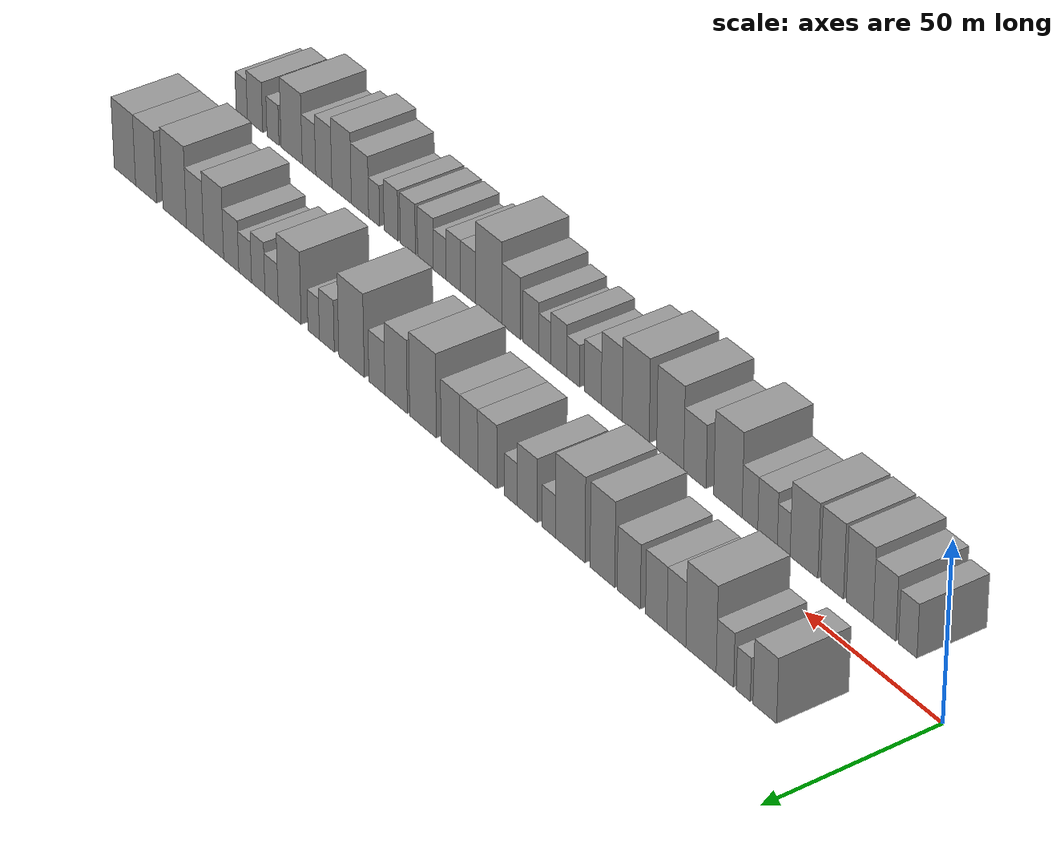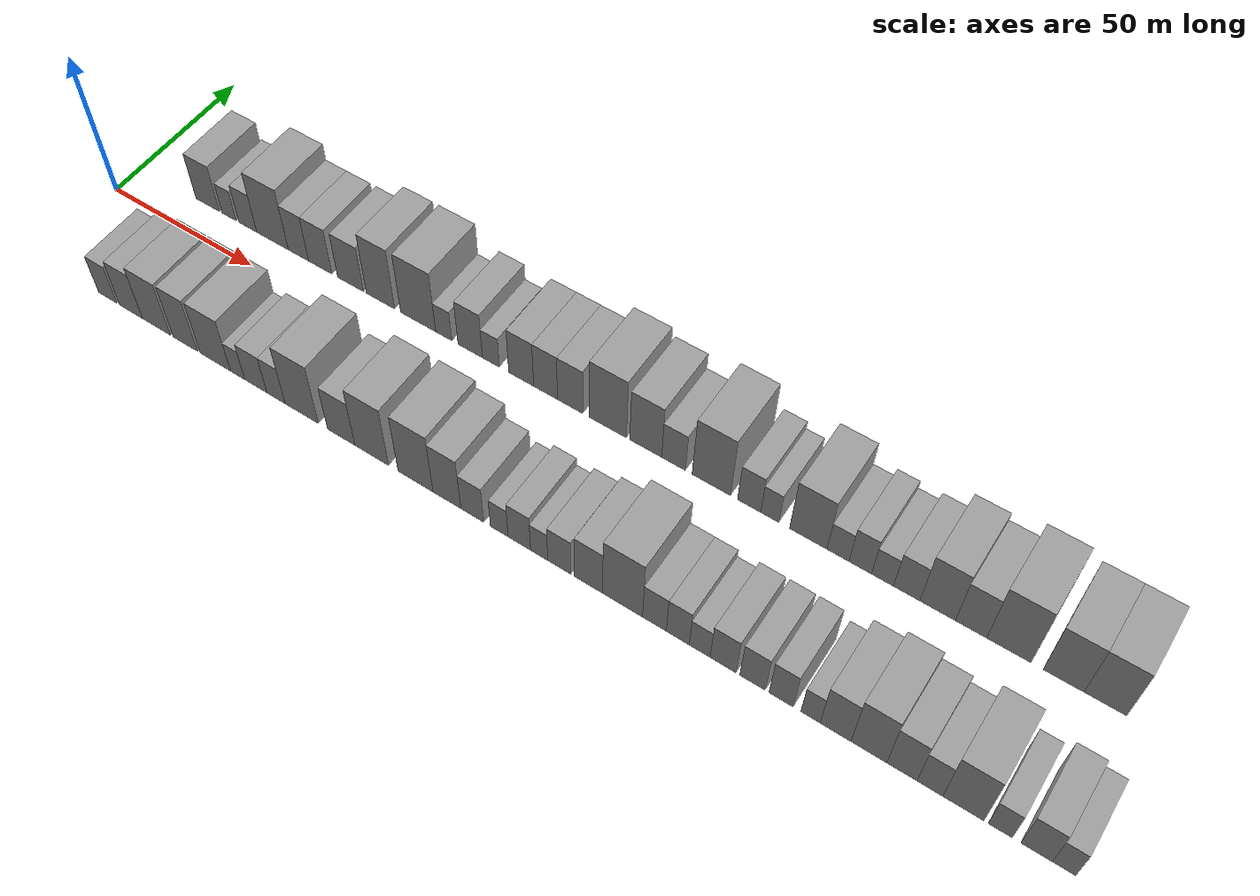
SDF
<sdf version="1.6">
 <world name="default">
  <scene>
   <sky><clouds><speed>12</speed></clouds></sky>
   <ambient>0.4 0.4 0.4 1</ambient>
   <background>0.7 0.7 0.7 1</background>
   <shadows>1</shadows>
  </scene>
  <gravity>0 0 -9.8066</gravity>
  <magnetic_field>6e-06 2.3e-05 -4.2e-05</magnetic_field>
  <physics default="0" name="default_physics" type="ode">
   <ode>
    <solver>
     <type>quick</type>
     <iters>10</iters>
     <sor>1.0</sor>
     <use_dynamic_moi_rescaling>0</use_dynamic_moi_rescaling>
    </solver>
    <constraints>
     <cfm>0</cfm>
     <erp>0.2</erp>
     <contact_max_correcting_vel>100</contact_max_correcting_vel>
     <contact_surface_layer>0.001</contact_surface_layer>
    </constraints>
   </ode>
   <max_step_size>0.004</max_step_size>
   <real_time_factor>1</real_time_factor>
   <real_time_update_rate>250</real_time_update_rate>
  </physics>
  <light name="sun" type="directional">
   <pose>0 0 10 0 0 0</pose>
   <diffuse>0.8 0.8 0.8 1</diffuse>
   <specular>0.2 0.2 0.2 1</specular>
   <attenuation>
    <range>1000</range>
    <constant>0.9</constant>
    <linear>0.01</linear>
    <quadratic>0.001</quadratic>
   </attenuation>
   <direction>-0.5 0.1 -0.9</direction>
  </light>
  <model name="building_1">
   <static>1</static>
   <pose>25.3415 20.0000 0 0.000000 0.000000 1.570796</pose>
   <link name="link">
    <pose>0 0 9.00 0 0 0</pose>
    <collision name="collision"><geometry><box><size>20.0000 8.6830 18.0000</size></box></geometry></collision>
    <visual name="visual">
     <cast_shadows>0</cast_shadows>
     <geometry><box><size>20.0000 8.6830 18.0000</size></box></geometry>
     <material>
      <script>
       <uri>model://grey_wall/materials/scripts</uri>
       <uri>model://grey_wall/materials/textures</uri>
       <name>vrc/grey_wall</name>
      </script>
     </material>
    </visual>
   </link>
  </model>
  <model name="building_2">
   <static>1</static>
   <pose>33.2663 20.0000 0 0.000000 0.000000 1.570796</pose>
   <link name="link">
    <pose>0 0 6.00 0 0 0</pose>
    <collision name="collision"><geometry><box><size>20.0000 5.1667 12.0000</size></box></geometry></collision>
    <visual name="visual">
     <cast_shadows>0</cast_shadows>
     <geometry><box><size>20.0000 5.1667 12.0000</size></box></geometry>
     <material>
      <script>
       <uri>model://grey_wall/materials/scripts</uri>
       <uri>model://grey_wall/materials/textures</uri>
       <name>vrc/grey_wall</name>
      </script>
     </material>
    </visual>
   </link>
  </model>
  <model name="building_3">
   <static>1</static>
   <pose>40.0961 20.0000 0 0.000000 0.000000 1.570796</pose>
   <link name="link">
    <pose>0 0 7.50 0 0 0</pose>
    <collision name="collision"><geometry><box><size>20.0000 6.4929 15.0000</size></box></geometry></collision>
    <visual name="visual">
     <cast_shadows>0</cast_shadows>
     <geometry><box><size>20.0000 6.4929 15.0000</size></box></geometry>
     <material>
      <script>
       <uri>model://grey_wall/materials/scripts</uri>
       <uri>model://grey_wall/materials/textures</uri>
       <name>vrc/grey_wall</name>
      </script>
     </material>
    </visual>
   </link>
  </model>
  <model name="building_4">
   <static>1</static>
   <pose>49.0467 20.0000 0 0.000000 0.000000 1.570796</pose>
   <link name="link">
    <pose>0 0 12.00 0 0 0</pose>
    <collision name="collision"><geometry><box><size>20.0000 11.4082 24.0000</size></box></geometry></collision>
    <visual name="visual">
     <cast_shadows>0</cast_shadows>
     <geometry><box><size>20.0000 11.4082 24.0000</size></box></geometry>
     <material>
      <script>
       <uri>model://grey_wall/materials/scripts</uri>
       <uri>model://grey_wall/materials/textures</uri>
       <name>vrc/grey_wall</name>
      </script>
     </material>
    </visual>
   </link>
  </model>
  <model name="building_5">
   <static>1</static>
   <pose>58.3521 20.0000 0 0.000000 0.000000 1.570796</pose>
   <link name="link">
    <pose>0 0 9.00 0 0 0</pose>
    <collision name="collision"><geometry><box><size>20.0000 7.2025 18.0000</size></box></geometry></collision>
    <visual name="visual">
     <cast_shadows>0</cast_shadows>
     <geometry><box><size>20.0000 7.2025 18.0000</size></box></geometry>
     <material>
      <script>
       <uri>model://grey_wall/materials/scripts</uri>
       <uri>model://grey_wall/materials/textures</uri>
       <name>vrc/grey_wall</name>
      </script>
     </material>
    </visual>
   </link>
  </model>
  <model name="building_6">
   <static>1</static>
   <pose>66.0468 20.0000 0 0.000000 0.000000 1.570796</pose>
   <link name="link">
    <pose>0 0 9.00 0 0 0</pose>
    <collision name="collision"><geometry><box><size>20.0000 8.1869 18.0000</size></box></geometry></collision>
    <visual name="visual">
     <cast_shadows>0</cast_shadows>
     <geometry><box><size>20.0000 8.1869 18.0000</size></box></geometry>
     <material>
      <script>
       <uri>model://grey_wall/materials/scripts</uri>
       <uri>model://grey_wall/materials/textures</uri>
       <name>vrc/grey_wall</name>
      </script>
     </material>
    </visual>
   </link>
  </model>
  <model name="building_7">
   <static>1</static>
   <pose>76.6029 20.0000 0 0.000000 0.000000 1.570796</pose>
   <link name="link">
    <pose>0 0 9.00 0 0 0</pose>
    <collision name="collision"><geometry><box><size>20.0000 8.9252 18.0000</size></box></geometry></collision>
    <visual name="visual">
     <cast_shadows>0</cast_shadows>
     <geometry><box><size>20.0000 8.9252 18.0000</size></box></geometry>
     <material>
      <script>
       <uri>model://grey_wall/materials/scripts</uri>
       <uri>model://grey_wall/materials/textures</uri>
       <name>vrc/grey_wall</name>
      </script>
     </material>
    </visual>
   </link>
  </model>
  <model name="building_8">
   <static>1</static>
   <pose>86.8832 20.0000 0 0.000000 0.000000 1.570796</pose>
   <link name="link">
    <pose>0 0 12.00 0 0 0</pose>
    <collision name="collision"><geometry><box><size>20.0000 9.6355 24.0000</size></box></geometry></collision>
    <visual name="visual">
     <cast_shadows>0</cast_shadows>
     <geometry><box><size>20.0000 9.6355 24.0000</size></box></geometry>
     <material>
      <script>
       <uri>model://grey_wall/materials/scripts</uri>
       <uri>model://grey_wall/materials/textures</uri>
       <name>vrc/grey_wall</name>
      </script>
     </material>
    </visual>
   </link>
  </model>
  <model name="building_9">
   <static>1</static>
   <pose>99.5599 20.0000 0 0.000000 0.000000 1.570796</pose>
   <link name="link">
    <pose>0 0 12.00 0 0 0</pose>
    <collision name="collision"><geometry><box><size>20.0000 11.7179 24.0000</size></box></geometry></collision>
    <visual name="visual">
     <cast_shadows>0</cast_shadows>
     <geometry><box><size>20.0000 11.7179 24.0000</size></box></geometry>
     <material>
      <script>
       <uri>model://grey_wall/materials/scripts</uri>
       <uri>model://grey_wall/materials/textures</uri>
       <name>vrc/grey_wall</name>
      </script>
     </material>
    </visual>
   </link>
  </model>
  <model name="building_10">
   <static>1</static>
   <pose>108.0974 20.0000 0 0.000000 0.000000 1.570796</pose>
   <link name="link">
    <pose>0 0 6.00 0 0 0</pose>
    <collision name="collision"><geometry><box><size>20.0000 5.3571 12.0000</size></box></geometry></collision>
    <visual name="visual">
     <cast_shadows>0</cast_shadows>
     <geometry><box><size>20.0000 5.3571 12.0000</size></box></geometry>
     <material>
      <script>
       <uri>model://grey_wall/materials/scripts</uri>
       <uri>model://grey_wall/materials/textures</uri>
       <name>vrc/grey_wall</name>
      </script>
     </material>
    </visual>
   </link>
  </model>
  <model name="building_11">
   <static>1</static>
   <pose>116.7581 20.0000 0 0.000000 0.000000 1.570796</pose>
   <link name="link">
    <pose>0 0 9.00 0 0 0</pose>
    <collision name="collision"><geometry><box><size>20.0000 7.9643 18.0000</size></box></geometry></collision>
    <visual name="visual">
     <cast_shadows>0</cast_shadows>
     <geometry><box><size>20.0000 7.9643 18.0000</size></box></geometry>
     <material>
      <script>
       <uri>model://grey_wall/materials/scripts</uri>
       <uri>model://grey_wall/materials/textures</uri>
       <name>vrc/grey_wall</name>
      </script>
     </material>
    </visual>
   </link>
  </model>
  <model name="building_12">
   <static>1</static>
   <pose>123.4481 20.0000 0 0.000000 0.000000 1.570796</pose>
   <link name="link">
    <pose>0 0 6.00 0 0 0</pose>
    <collision name="collision"><geometry><box><size>20.0000 5.4156 12.0000</size></box></geometry></collision>
    <visual name="visual">
     <cast_shadows>0</cast_shadows>
     <geometry><box><size>20.0000 5.4156 12.0000</size></box></geometry>
     <material>
      <script>
       <uri>model://grey_wall/materials/scripts</uri>
       <uri>model://grey_wall/materials/textures</uri>
       <name>vrc/grey_wall</name>
      </script>
     </material>
    </visual>
   </link>
  </model>
  <model name="building_13">
   <static>1</static>
   <pose>133.0971 20.0000 0 0.000000 0.000000 1.570796</pose>
   <link name="link">
    <pose>0 0 9.00 0 0 0</pose>
    <collision name="collision"><geometry><box><size>20.0000 7.8824 18.0000</size></box></geometry></collision>
    <visual name="visual">
     <cast_shadows>0</cast_shadows>
     <geometry><box><size>20.0000 7.8824 18.0000</size></box></geometry>
     <material>
      <script>
       <uri>model://grey_wall/materials/scripts</uri>
       <uri>model://grey_wall/materials/textures</uri>
       <name>vrc/grey_wall</name>
      </script>
     </material>
    </visual>
   </link>
  </model>
  <model name="building_14">
   <static>1</static>
   <pose>140.7714 20.0000 0 0.000000 0.000000 1.570796</pose>
   <link name="link">
    <pose>0 0 9.00 0 0 0</pose>
    <collision name="collision"><geometry><box><size>20.0000 7.4662 18.0000</size></box></geometry></collision>
    <visual name="visual">
     <cast_shadows>0</cast_shadows>
     <geometry><box><size>20.0000 7.4662 18.0000</size></box></geometry>
     <material>
      <script>
       <uri>model://grey_wall/materials/scripts</uri>
       <uri>model://grey_wall/materials/textures</uri>
       <name>vrc/grey_wall</name>
      </script>
     </material>
    </visual>
   </link>
  </model>
  <model name="building_15">
   <static>1</static>
   <pose>148.4154 20.0000 0 0.000000 0.000000 1.570796</pose>
   <link name="link">
    <pose>0 0 9.00 0 0 0</pose>
    <collision name="collision"><geometry><box><size>20.0000 7.8217 18.0000</size></box></geometry></collision>
    <visual name="visual">
     <cast_shadows>0</cast_shadows>
     <geometry><box><size>20.0000 7.8217 18.0000</size></box></geometry>
     <material>
      <script>
       <uri>model://grey_wall/materials/scripts</uri>
       <uri>model://grey_wall/materials/textures</uri>
       <name>vrc/grey_wall</name>
      </script>
     </material>
    </visual>
   </link>
  </model>
  <model name="building_16">
   <static>1</static>
   <pose>159.9674 20.0000 0 0.000000 0.000000 1.570796</pose>
   <link name="link">
    <pose>0 0 12.00 0 0 0</pose>
    <collision name="collision"><geometry><box><size>20.0000 11.2824 24.0000</size></box></geometry></collision>
    <visual name="visual">
     <cast_shadows>0</cast_shadows>
     <geometry><box><size>20.0000 11.2824 24.0000</size></box></geometry>
     <material>
      <script>
       <uri>model://grey_wall/materials/scripts</uri>
       <uri>model://grey_wall/materials/textures</uri>
       <name>vrc/grey_wall</name>
      </script>
     </material>
    </visual>
   </link>
  </model>
  <model name="building_17">
   <static>1</static>
   <pose>171.3754 20.0000 0 0.000000 0.000000 1.570796</pose>
   <link name="link">
    <pose>0 0 10.50 0 0 0</pose>
    <collision name="collision"><geometry><box><size>20.0000 9.5335 21.0000</size></box></geometry></collision>
    <visual name="visual">
     <cast_shadows>0</cast_shadows>
     <geometry><box><size>20.0000 9.5335 21.0000</size></box></geometry>
     <material>
      <script>
       <uri>model://grey_wall/materials/scripts</uri>
       <uri>model://grey_wall/materials/textures</uri>
       <name>vrc/grey_wall</name>
      </script>
     </material>
    </visual>
   </link>
  </model>
  <model name="building_18">
   <static>1</static>
   <pose>179.6254 20.0000 0 0.000000 0.000000 1.570796</pose>
   <link name="link">
    <pose>0 0 7.50 0 0 0</pose>
    <collision name="collision"><geometry><box><size>20.0000 6.9665 15.0000</size></box></geometry></collision>
    <visual name="visual">
     <cast_shadows>0</cast_shadows>
     <geometry><box><size>20.0000 6.9665 15.0000</size></box></geometry>
     <material>
      <script>
       <uri>model://grey_wall/materials/scripts</uri>
       <uri>model://grey_wall/materials/textures</uri>
       <name>vrc/grey_wall</name>
      </script>
     </material>
    </visual>
   </link>
  </model>
  <model name="building_19">
   <static>1</static>
   <pose>190.6612 20.0000 0 0.000000 0.000000 1.570796</pose>
   <link name="link">
    <pose>0 0 12.00 0 0 0</pose>
    <collision name="collision"><geometry><box><size>20.0000 11.1052 24.0000</size></box></geometry></collision>
    <visual name="visual">
     <cast_shadows>0</cast_shadows>
     <geometry><box><size>20.0000 11.1052 24.0000</size></box></geometry>
     <material>
      <script>
       <uri>model://grey_wall/materials/scripts</uri>
       <uri>model://grey_wall/materials/textures</uri>
       <name>vrc/grey_wall</name>
      </script>
     </material>
    </visual>
   </link>
  </model>
  <model name="building_20">
   <static>1</static>
   <pose>201.5022 20.0000 0 0.000000 0.000000 1.570796</pose>
   <link name="link">
    <pose>0 0 7.50 0 0 0</pose>
    <collision name="collision"><geometry><box><size>20.0000 6.5768 15.0000</size></box></geometry></collision>
    <visual name="visual">
     <cast_shadows>0</cast_shadows>
     <geometry><box><size>20.0000 6.5768 15.0000</size></box></geometry>
     <material>
      <script>
       <uri>model://grey_wall/materials/scripts</uri>
       <uri>model://grey_wall/materials/textures</uri>
       <name>vrc/grey_wall</name>
      </script>
     </material>
    </visual>
   </link>
  </model>
  <model name="building_21">
   <static>1</static>
   <pose>207.3468 20.0000 0 0.000000 0.000000 1.570796</pose>
   <link name="link">
    <pose>0 0 6.00 0 0 0</pose>
    <collision name="collision"><geometry><box><size>20.0000 5.1124 12.0000</size></box></geometry></collision>
    <visual name="visual">
     <cast_shadows>0</cast_shadows>
     <geometry><box><size>20.0000 5.1124 12.0000</size></box></geometry>
     <material>
      <script>
       <uri>model://grey_wall/materials/scripts</uri>
       <uri>model://grey_wall/materials/textures</uri>
       <name>vrc/grey_wall</name>
      </script>
     </material>
    </visual>
   </link>
  </model>
  <model name="building_22">
   <static>1</static>
   <pose>218.0613 20.0000 0 0.000000 0.000000 1.570796</pose>
   <link name="link">
    <pose>0 0 10.50 0 0 0</pose>
    <collision name="collision"><geometry><box><size>20.0000 10.3166 21.0000</size></box></geometry></collision>
    <visual name="visual">
     <cast_shadows>0</cast_shadows>
     <geometry><box><size>20.0000 10.3166 21.0000</size></box></geometry>
     <material>
      <script>
       <uri>model://grey_wall/materials/scripts</uri>
       <uri>model://grey_wall/materials/textures</uri>
       <name>vrc/grey_wall</name>
      </script>
     </material>
    </visual>
   </link>
  </model>
  <model name="building_23">
   <static>1</static>
   <pose>226.2164 20.0000 0 0.000000 0.000000 1.570796</pose>
   <link name="link">
    <pose>0 0 6.00 0 0 0</pose>
    <collision name="collision"><geometry><box><size>20.0000 5.9935 12.0000</size></box></geometry></collision>
    <visual name="visual">
     <cast_shadows>0</cast_shadows>
     <geometry><box><size>20.0000 5.9935 12.0000</size></box></geometry>
     <material>
      <script>
       <uri>model://grey_wall/materials/scripts</uri>
       <uri>model://grey_wall/materials/textures</uri>
       <name>vrc/grey_wall</name>
      </script>
     </material>
    </visual>
   </link>
  </model>
  <model name="building_24">
   <static>1</static>
   <pose>232.2508 20.0000 0 0.000000 0.000000 1.570796</pose>
   <link name="link">
    <pose>0 0 7.50 0 0 0</pose>
    <collision name="collision"><geometry><box><size>20.0000 6.0754 15.0000</size></box></geometry></collision>
    <visual name="visual">
     <cast_shadows>0</cast_shadows>
     <geometry><box><size>20.0000 6.0754 15.0000</size></box></geometry>
     <material>
      <script>
       <uri>model://grey_wall/materials/scripts</uri>
       <uri>model://grey_wall/materials/textures</uri>
       <name>vrc/grey_wall</name>
      </script>
     </material>
    </visual>
   </link>
  </model>
  <model name="building_25">
   <static>1</static>
   <pose>238.2232 20.0000 0 0.000000 0.000000 1.570796</pose>
   <link name="link">
    <pose>0 0 6.00 0 0 0</pose>
    <collision name="collision"><geometry><box><size>20.0000 5.8694 12.0000</size></box></geometry></collision>
    <visual name="visual">
     <cast_shadows>0</cast_shadows>
     <geometry><box><size>20.0000 5.8694 12.0000</size></box></geometry>
     <material>
      <script>
       <uri>model://grey_wall/materials/scripts</uri>
       <uri>model://grey_wall/materials/textures</uri>
       <name>vrc/grey_wall</name>
      </script>
     </material>
    </visual>
   </link>
  </model>
  <model name="building_26">
   <static>1</static>
   <pose>244.6414 20.0000 0 0.000000 0.000000 1.570796</pose>
   <link name="link">
    <pose>0 0 7.50 0 0 0</pose>
    <collision name="collision"><geometry><box><size>20.0000 6.9671 15.0000</size></box></geometry></collision>
    <visual name="visual">
     <cast_shadows>0</cast_shadows>
     <geometry><box><size>20.0000 6.9671 15.0000</size></box></geometry>
     <material>
      <script>
       <uri>model://grey_wall/materials/scripts</uri>
       <uri>model://grey_wall/materials/textures</uri>
       <name>vrc/grey_wall</name>
      </script>
     </material>
    </visual>
   </link>
  </model>
  <model name="building_27">
   <static>1</static>
   <pose>252.7623 20.0000 0 0.000000 0.000000 1.570796</pose>
   <link name="link">
    <pose>0 0 10.50 0 0 0</pose>
    <collision name="collision"><geometry><box><size>20.0000 9.2746 21.0000</size></box></geometry></collision>
    <visual name="visual">
     <cast_shadows>0</cast_shadows>
     <geometry><box><size>20.0000 9.2746 21.0000</size></box></geometry>
     <material>
      <script>
       <uri>model://grey_wall/materials/scripts</uri>
       <uri>model://grey_wall/materials/textures</uri>
       <name>vrc/grey_wall</name>
      </script>
     </material>
    </visual>
   </link>
  </model>
  <model name="building_28">
   <static>1</static>
   <pose>261.4188 20.0000 0 0.000000 0.000000 1.570796</pose>
   <link name="link">
    <pose>0 0 9.00 0 0 0</pose>
    <collision name="collision"><geometry><box><size>20.0000 8.0386 18.0000</size></box></geometry></collision>
    <visual name="visual">
     <cast_shadows>0</cast_shadows>
     <geometry><box><size>20.0000 8.0386 18.0000</size></box></geometry>
     <material>
      <script>
       <uri>model://grey_wall/materials/scripts</uri>
       <uri>model://grey_wall/materials/textures</uri>
       <name>vrc/grey_wall</name>
      </script>
     </material>
    </visual>
   </link>
  </model>
  <model name="building_29">
   <static>1</static>
   <pose>271.0423 20.0000 0 0.000000 0.000000 1.570796</pose>
   <link name="link">
    <pose>0 0 12.00 0 0 0</pose>
    <collision name="collision"><geometry><box><size>20.0000 11.2085 24.0000</size></box></geometry></collision>
    <visual name="visual">
     <cast_shadows>0</cast_shadows>
     <geometry><box><size>20.0000 11.2085 24.0000</size></box></geometry>
     <material>
      <script>
       <uri>model://grey_wall/materials/scripts</uri>
       <uri>model://grey_wall/materials/textures</uri>
       <name>vrc/grey_wall</name>
      </script>
     </material>
    </visual>
   </link>
  </model>
  <model name="building_30">
   <static>1</static>
   <pose>284.6836 20.0000 0 0.000000 0.000000 1.570796</pose>
   <link name="link">
    <pose>0 0 10.50 0 0 0</pose>
    <collision name="collision"><geometry><box><size>20.0000 10.0740 21.0000</size></box></geometry></collision>
    <visual name="visual">
     <cast_shadows>0</cast_shadows>
     <geometry><box><size>20.0000 10.0740 21.0000</size></box></geometry>
     <material>
      <script>
       <uri>model://grey_wall/materials/scripts</uri>
       <uri>model://grey_wall/materials/textures</uri>
       <name>vrc/grey_wall</name>
      </script>
     </material>
    </visual>
   </link>
  </model>
  <model name="building_31">
   <static>1</static>
   <pose>294.8877 20.0000 0 0.000000 0.000000 1.570796</pose>
   <link name="link">
    <pose>0 0 10.50 0 0 0</pose>
    <collision name="collision"><geometry><box><size>20.0000 10.3343 21.0000</size></box></geometry></collision>
    <visual name="visual">
     <cast_shadows>0</cast_shadows>
     <geometry><box><size>20.0000 10.3343 21.0000</size></box></geometry>
     <material>
      <script>
       <uri>model://grey_wall/materials/scripts</uri>
       <uri>model://grey_wall/materials/textures</uri>
       <name>vrc/grey_wall</name>
      </script>
     </material>
    </visual>
   </link>
  </model>
  <model name="building_32">
   <static>1</static>
   <pose>25.3342 -20.0000 0 0.000000 0.000000 1.570796</pose>
   <link name="link">
    <pose>0 0 7.50 0 0 0</pose>
    <collision name="collision"><geometry><box><size>20.0000 6.6684 15.0000</size></box></geometry></collision>
    <visual name="visual">
     <cast_shadows>0</cast_shadows>
     <geometry><box><size>20.0000 6.6684 15.0000</size></box></geometry>
     <material>
      <script>
       <uri>model://grey_wall/materials/scripts</uri>
       <uri>model://grey_wall/materials/textures</uri>
       <name>vrc/grey_wall</name>
      </script>
     </material>
    </visual>
   </link>
  </model>
  <model name="building_33">
   <static>1</static>
   <pose>33.7897 -20.0000 0 0.000000 0.000000 1.570796</pose>
   <link name="link">
    <pose>0 0 9.00 0 0 0</pose>
    <collision name="collision"><geometry><box><size>20.0000 8.2426 18.0000</size></box></geometry></collision>
    <visual name="visual">
     <cast_shadows>0</cast_shadows>
     <geometry><box><size>20.0000 8.2426 18.0000</size></box></geometry>
     <material>
      <script>
       <uri>model://grey_wall/materials/scripts</uri>
       <uri>model://grey_wall/materials/textures</uri>
       <name>vrc/grey_wall</name>
      </script>
     </material>
    </visual>
   </link>
  </model>
  <model name="building_34">
   <static>1</static>
   <pose>42.8953 -20.0000 0 0.000000 0.000000 1.570796</pose>
   <link name="link">
    <pose>0 0 10.50 0 0 0</pose>
    <collision name="collision"><geometry><box><size>20.0000 9.9687 21.0000</size></box></geometry></collision>
    <visual name="visual">
     <cast_shadows>0</cast_shadows>
     <geometry><box><size>20.0000 9.9687 21.0000</size></box></geometry>
     <material>
      <script>
       <uri>model://grey_wall/materials/scripts</uri>
       <uri>model://grey_wall/materials/textures</uri>
       <name>vrc/grey_wall</name>
      </script>
     </material>
    </visual>
   </link>
  </model>
  <model name="building_35">
   <static>1</static>
   <pose>53.1562 -20.0000 0 0.000000 0.000000 1.570796</pose>
   <link name="link">
    <pose>0 0 10.50 0 0 0</pose>
    <collision name="collision"><geometry><box><size>20.0000 8.5532 21.0000</size></box></geometry></collision>
    <visual name="visual">
     <cast_shadows>0</cast_shadows>
     <geometry><box><size>20.0000 8.5532 21.0000</size></box></geometry>
     <material>
      <script>
       <uri>model://grey_wall/materials/scripts</uri>
       <uri>model://grey_wall/materials/textures</uri>
       <name>vrc/grey_wall</name>
      </script>
     </material>
    </visual>
   </link>
  </model>
  <model name="building_36">
   <static>1</static>
   <pose>63.6658 -20.0000 0 0.000000 0.000000 1.570796</pose>
   <link name="link">
    <pose>0 0 10.50 0 0 0</pose>
    <collision name="collision"><geometry><box><size>20.0000 10.4660 21.0000</size></box></geometry></collision>
    <visual name="visual">
     <cast_shadows>0</cast_shadows>
     <geometry><box><size>20.0000 10.4660 21.0000</size></box></geometry>
     <material>
      <script>
       <uri>model://grey_wall/materials/scripts</uri>
       <uri>model://grey_wall/materials/textures</uri>
       <name>vrc/grey_wall</name>
      </script>
     </material>
    </visual>
   </link>
  </model>
  <model name="building_37">
   <static>1</static>
   <pose>71.3267 -20.0000 0 0.000000 0.000000 1.570796</pose>
   <link name="link">
    <pose>0 0 6.00 0 0 0</pose>
    <collision name="collision"><geometry><box><size>20.0000 4.8558 12.0000</size></box></geometry></collision>
    <visual name="visual">
     <cast_shadows>0</cast_shadows>
     <geometry><box><size>20.0000 4.8558 12.0000</size></box></geometry>
     <material>
      <script>
       <uri>model://grey_wall/materials/scripts</uri>
       <uri>model://grey_wall/materials/textures</uri>
       <name>vrc/grey_wall</name>
      </script>
     </material>
    </visual>
   </link>
  </model>
  <model name="building_38">
   <static>1</static>
   <pose>77.5010 -20.0000 0 0.000000 0.000000 1.570796</pose>
   <link name="link">
    <pose>0 0 7.50 0 0 0</pose>
    <collision name="collision"><geometry><box><size>20.0000 7.4928 15.0000</size></box></geometry></collision>
    <visual name="visual">
     <cast_shadows>0</cast_shadows>
     <geometry><box><size>20.0000 7.4928 15.0000</size></box></geometry>
     <material>
      <script>
       <uri>model://grey_wall/materials/scripts</uri>
       <uri>model://grey_wall/materials/textures</uri>
       <name>vrc/grey_wall</name>
      </script>
     </material>
    </visual>
   </link>
  </model>
  <model name="building_39">
   <static>1</static>
   <pose>84.2859 -20.0000 0 0.000000 0.000000 1.570796</pose>
   <link name="link">
    <pose>0 0 7.50 0 0 0</pose>
    <collision name="collision"><geometry><box><size>20.0000 6.0768 15.0000</size></box></geometry></collision>
    <visual name="visual">
     <cast_shadows>0</cast_shadows>
     <geometry><box><size>20.0000 6.0768 15.0000</size></box></geometry>
     <material>
      <script>
       <uri>model://grey_wall/materials/scripts</uri>
       <uri>model://grey_wall/materials/textures</uri>
       <name>vrc/grey_wall</name>
      </script>
     </material>
    </visual>
   </link>
  </model>
  <model name="building_40">
   <static>1</static>
   <pose>92.8205 -20.0000 0 0.000000 0.000000 1.570796</pose>
   <link name="link">
    <pose>0 0 12.00 0 0 0</pose>
    <collision name="collision"><geometry><box><size>20.0000 10.9925 24.0000</size></box></geometry></collision>
    <visual name="visual">
     <cast_shadows>0</cast_shadows>
     <geometry><box><size>20.0000 10.9925 24.0000</size></box></geometry>
     <material>
      <script>
       <uri>model://grey_wall/materials/scripts</uri>
       <uri>model://grey_wall/materials/textures</uri>
       <name>vrc/grey_wall</name>
      </script>
     </material>
    </visual>
   </link>
  </model>
  <model name="building_41">
   <static>1</static>
   <pose>105.7280 -20.0000 0 0.000000 0.000000 1.570796</pose>
   <link name="link">
    <pose>0 0 9.00 0 0 0</pose>
    <collision name="collision"><geometry><box><size>20.0000 8.8225 18.0000</size></box></geometry></collision>
    <visual name="visual">
     <cast_shadows>0</cast_shadows>
     <geometry><box><size>20.0000 8.8225 18.0000</size></box></geometry>
     <material>
      <script>
       <uri>model://grey_wall/materials/scripts</uri>
       <uri>model://grey_wall/materials/textures</uri>
       <name>vrc/grey_wall</name>
      </script>
     </material>
    </visual>
   </link>
  </model>
  <model name="building_42">
   <static>1</static>
   <pose>115.5083 -20.0000 0 0.000000 0.000000 1.570796</pose>
   <link name="link">
    <pose>0 0 12.00 0 0 0</pose>
    <collision name="collision"><geometry><box><size>20.0000 10.7380 24.0000</size></box></geometry></collision>
    <visual name="visual">
     <cast_shadows>0</cast_shadows>
     <geometry><box><size>20.0000 10.7380 24.0000</size></box></geometry>
     <material>
      <script>
       <uri>model://grey_wall/materials/scripts</uri>
       <uri>model://grey_wall/materials/textures</uri>
       <name>vrc/grey_wall</name>
      </script>
     </material>
    </visual>
   </link>
  </model>
  <model name="building_43">
   <static>1</static>
   <pose>129.3160 -20.0000 0 0.000000 0.000000 1.570796</pose>
   <link name="link">
    <pose>0 0 12.00 0 0 0</pose>
    <collision name="collision"><geometry><box><size>20.0000 10.8774 24.0000</size></box></geometry></collision>
    <visual name="visual">
     <cast_shadows>0</cast_shadows>
     <geometry><box><size>20.0000 10.8774 24.0000</size></box></geometry>
     <material>
      <script>
       <uri>model://grey_wall/materials/scripts</uri>
       <uri>model://grey_wall/materials/textures</uri>
       <name>vrc/grey_wall</name>
      </script>
     </material>
    </visual>
   </link>
  </model>
  <model name="building_44">
   <static>1</static>
   <pose>139.0252 -20.0000 0 0.000000 0.000000 1.570796</pose>
   <link name="link">
    <pose>0 0 10.50 0 0 0</pose>
    <collision name="collision"><geometry><box><size>20.0000 8.5412 21.0000</size></box></geometry></collision>
    <visual name="visual">
     <cast_shadows>0</cast_shadows>
     <geometry><box><size>20.0000 8.5412 21.0000</size></box></geometry>
     <material>
      <script>
       <uri>model://grey_wall/materials/scripts</uri>
       <uri>model://grey_wall/materials/textures</uri>
       <name>vrc/grey_wall</name>
      </script>
     </material>
    </visual>
   </link>
  </model>
  <model name="building_45">
   <static>1</static>
   <pose>146.7590 -20.0000 0 0.000000 0.000000 1.570796</pose>
   <link name="link">
    <pose>0 0 7.50 0 0 0</pose>
    <collision name="collision"><geometry><box><size>20.0000 6.9264 15.0000</size></box></geometry></collision>
    <visual name="visual">
     <cast_shadows>0</cast_shadows>
     <geometry><box><size>20.0000 6.9264 15.0000</size></box></geometry>
     <material>
      <script>
       <uri>model://grey_wall/materials/scripts</uri>
       <uri>model://grey_wall/materials/textures</uri>
       <name>vrc/grey_wall</name>
      </script>
     </material>
    </visual>
   </link>
  </model>
  <model name="building_46">
   <static>1</static>
   <pose>154.8635 -20.0000 0 0.000000 0.000000 1.570796</pose>
   <link name="link">
    <pose>0 0 6.00 0 0 0</pose>
    <collision name="collision"><geometry><box><size>20.0000 5.2826 12.0000</size></box></geometry></collision>
    <visual name="visual">
     <cast_shadows>0</cast_shadows>
     <geometry><box><size>20.0000 5.2826 12.0000</size></box></geometry>
     <material>
      <script>
       <uri>model://grey_wall/materials/scripts</uri>
       <uri>model://grey_wall/materials/textures</uri>
       <name>vrc/grey_wall</name>
      </script>
     </material>
    </visual>
   </link>
  </model>
  <model name="building_47">
   <static>1</static>
   <pose>160.8162 -20.0000 0 0.000000 0.000000 1.570796</pose>
   <link name="link">
    <pose>0 0 7.50 0 0 0</pose>
    <collision name="collision"><geometry><box><size>20.0000 6.6228 15.0000</size></box></geometry></collision>
    <visual name="visual">
     <cast_shadows>0</cast_shadows>
     <geometry><box><size>20.0000 6.6228 15.0000</size></box></geometry>
     <material>
      <script>
       <uri>model://grey_wall/materials/scripts</uri>
       <uri>model://grey_wall/materials/textures</uri>
       <name>vrc/grey_wall</name>
      </script>
     </material>
    </visual>
   </link>
  </model>
  <model name="building_48">
   <static>1</static>
   <pose>166.6383 -20.0000 0 0.000000 0.000000 1.570796</pose>
   <link name="link">
    <pose>0 0 6.00 0 0 0</pose>
    <collision name="collision"><geometry><box><size>20.0000 5.0215 12.0000</size></box></geometry></collision>
    <visual name="visual">
     <cast_shadows>0</cast_shadows>
     <geometry><box><size>20.0000 5.0215 12.0000</size></box></geometry>
     <material>
      <script>
       <uri>model://grey_wall/materials/scripts</uri>
       <uri>model://grey_wall/materials/textures</uri>
       <name>vrc/grey_wall</name>
      </script>
     </material>
    </visual>
   </link>
  </model>
  <model name="building_49">
   <static>1</static>
   <pose>172.5131 -20.0000 0 0.000000 0.000000 1.570796</pose>
   <link name="link">
    <pose>0 0 7.50 0 0 0</pose>
    <collision name="collision"><geometry><box><size>20.0000 6.7281 15.0000</size></box></geometry></collision>
    <visual name="visual">
     <cast_shadows>0</cast_shadows>
     <geometry><box><size>20.0000 6.7281 15.0000</size></box></geometry>
     <material>
      <script>
       <uri>model://grey_wall/materials/scripts</uri>
       <uri>model://grey_wall/materials/textures</uri>
       <name>vrc/grey_wall</name>
      </script>
     </material>
    </visual>
   </link>
  </model>
  <model name="building_50">
   <static>1</static>
   <pose>180.8635 -20.0000 0 0.000000 0.000000 1.570796</pose>
   <link name="link">
    <pose>0 0 9.00 0 0 0</pose>
    <collision name="collision"><geometry><box><size>20.0000 7.9726 18.0000</size></box></geometry></collision>
    <visual name="visual">
     <cast_shadows>0</cast_shadows>
     <geometry><box><size>20.0000 7.9726 18.0000</size></box></geometry>
     <material>
      <script>
       <uri>model://grey_wall/materials/scripts</uri>
       <uri>model://grey_wall/materials/textures</uri>
       <name>vrc/grey_wall</name>
      </script>
     </material>
    </visual>
   </link>
  </model>
  <model name="building_51">
   <static>1</static>
   <pose>190.4805 -20.0000 0 0.000000 0.000000 1.570796</pose>
   <link name="link">
    <pose>0 0 12.00 0 0 0</pose>
    <collision name="collision"><geometry><box><size>20.0000 11.2616 24.0000</size></box></geometry></collision>
    <visual name="visual">
     <cast_shadows>0</cast_shadows>
     <geometry><box><size>20.0000 11.2616 24.0000</size></box></geometry>
     <material>
      <script>
       <uri>model://grey_wall/materials/scripts</uri>
       <uri>model://grey_wall/materials/textures</uri>
       <name>vrc/grey_wall</name>
      </script>
     </material>
    </visual>
   </link>
  </model>
  <model name="building_52">
   <static>1</static>
   <pose>199.4059 -20.0000 0 0.000000 0.000000 1.570796</pose>
   <link name="link">
    <pose>0 0 7.50 0 0 0</pose>
    <collision name="collision"><geometry><box><size>20.0000 6.5890 15.0000</size></box></geometry></collision>
    <visual name="visual">
     <cast_shadows>0</cast_shadows>
     <geometry><box><size>20.0000 6.5890 15.0000</size></box></geometry>
     <material>
      <script>
       <uri>model://grey_wall/materials/scripts</uri>
       <uri>model://grey_wall/materials/textures</uri>
       <name>vrc/grey_wall</name>
      </script>
     </material>
    </visual>
   </link>
  </model>
  <model name="building_53">
   <static>1</static>
   <pose>205.8485 -20.0000 0 0.000000 0.000000 1.570796</pose>
   <link name="link">
    <pose>0 0 7.50 0 0 0</pose>
    <collision name="collision"><geometry><box><size>20.0000 6.2962 15.0000</size></box></geometry></collision>
    <visual name="visual">
     <cast_shadows>0</cast_shadows>
     <geometry><box><size>20.0000 6.2962 15.0000</size></box></geometry>
     <material>
      <script>
       <uri>model://grey_wall/materials/scripts</uri>
       <uri>model://grey_wall/materials/textures</uri>
       <name>vrc/grey_wall</name>
      </script>
     </material>
    </visual>
   </link>
  </model>
  <model name="building_54">
   <static>1</static>
   <pose>211.8099 -20.0000 0 0.000000 0.000000 1.570796</pose>
   <link name="link">
    <pose>0 0 6.00 0 0 0</pose>
    <collision name="collision"><geometry><box><size>20.0000 5.6266 12.0000</size></box></geometry></collision>
    <visual name="visual">
     <cast_shadows>0</cast_shadows>
     <geometry><box><size>20.0000 5.6266 12.0000</size></box></geometry>
     <material>
      <script>
       <uri>model://grey_wall/materials/scripts</uri>
       <uri>model://grey_wall/materials/textures</uri>
       <name>vrc/grey_wall</name>
      </script>
     </material>
    </visual>
   </link>
  </model>
  <model name="building_55">
   <static>1</static>
   <pose>218.0965 -20.0000 0 0.000000 0.000000 1.570796</pose>
   <link name="link">
    <pose>0 0 7.50 0 0 0</pose>
    <collision name="collision"><geometry><box><size>20.0000 6.9466 15.0000</size></box></geometry></collision>
    <visual name="visual">
     <cast_shadows>0</cast_shadows>
     <geometry><box><size>20.0000 6.9466 15.0000</size></box></geometry>
     <material>
      <script>
       <uri>model://grey_wall/materials/scripts</uri>
       <uri>model://grey_wall/materials/textures</uri>
       <name>vrc/grey_wall</name>
      </script>
     </material>
    </visual>
   </link>
  </model>
  <model name="building_56">
   <static>1</static>
   <pose>225.9277 -20.0000 0 0.000000 0.000000 1.570796</pose>
   <link name="link">
    <pose>0 0 7.50 0 0 0</pose>
    <collision name="collision"><geometry><box><size>20.0000 6.7158 15.0000</size></box></geometry></collision>
    <visual name="visual">
     <cast_shadows>0</cast_shadows>
     <geometry><box><size>20.0000 6.7158 15.0000</size></box></geometry>
     <material>
      <script>
       <uri>model://grey_wall/materials/scripts</uri>
       <uri>model://grey_wall/materials/textures</uri>
       <name>vrc/grey_wall</name>
      </script>
     </material>
    </visual>
   </link>
  </model>
  <model name="building_57">
   <static>1</static>
   <pose>233.4308 -20.0000 0 0.000000 0.000000 1.570796</pose>
   <link name="link">
    <pose>0 0 7.50 0 0 0</pose>
    <collision name="collision"><geometry><box><size>20.0000 6.2904 15.0000</size></box></geometry></collision>
    <visual name="visual">
     <cast_shadows>0</cast_shadows>
     <geometry><box><size>20.0000 6.2904 15.0000</size></box></geometry>
     <material>
      <script>
       <uri>model://grey_wall/materials/scripts</uri>
       <uri>model://grey_wall/materials/textures</uri>
       <name>vrc/grey_wall</name>
      </script>
     </material>
    </visual>
   </link>
  </model>
  <model name="building_58">
   <static>1</static>
   <pose>241.0456 -20.0000 0 0.000000 0.000000 1.570796</pose>
   <link name="link">
    <pose>0 0 6.00 0 0 0</pose>
    <collision name="collision"><geometry><box><size>20.0000 4.9393 12.0000</size></box></geometry></collision>
    <visual name="visual">
     <cast_shadows>0</cast_shadows>
     <geometry><box><size>20.0000 4.9393 12.0000</size></box></geometry>
     <material>
      <script>
       <uri>model://grey_wall/materials/scripts</uri>
       <uri>model://grey_wall/materials/textures</uri>
       <name>vrc/grey_wall</name>
      </script>
     </material>
    </visual>
   </link>
  </model>
  <model name="building_59">
   <static>1</static>
   <pose>247.4343 -20.0000 0 0.000000 0.000000 1.570796</pose>
   <link name="link">
    <pose>0 0 9.00 0 0 0</pose>
    <collision name="collision"><geometry><box><size>20.0000 7.8380 18.0000</size></box></geometry></collision>
    <visual name="visual">
     <cast_shadows>0</cast_shadows>
     <geometry><box><size>20.0000 7.8380 18.0000</size></box></geometry>
     <material>
      <script>
       <uri>model://grey_wall/materials/scripts</uri>
       <uri>model://grey_wall/materials/textures</uri>
       <name>vrc/grey_wall</name>
      </script>
     </material>
    </visual>
   </link>
  </model>
  <model name="building_60">
   <static>1</static>
   <pose>255.8329 -20.0000 0 0.000000 0.000000 1.570796</pose>
   <link name="link">
    <pose>0 0 10.50 0 0 0</pose>
    <collision name="collision"><geometry><box><size>20.0000 8.9593 21.0000</size></box></geometry></collision>
    <visual name="visual">
     <cast_shadows>0</cast_shadows>
     <geometry><box><size>20.0000 8.9593 21.0000</size></box></geometry>
     <material>
      <script>
       <uri>model://grey_wall/materials/scripts</uri>
       <uri>model://grey_wall/materials/textures</uri>
       <name>vrc/grey_wall</name>
      </script>
     </material>
    </visual>
   </link>
  </model>
  <model name="building_61">
   <static>1</static>
   <pose>264.0437 -20.0000 0 0.000000 0.000000 1.570796</pose>
   <link name="link">
    <pose>0 0 9.00 0 0 0</pose>
    <collision name="collision"><geometry><box><size>20.0000 7.4623 18.0000</size></box></geometry></collision>
    <visual name="visual">
     <cast_shadows>0</cast_shadows>
     <geometry><box><size>20.0000 7.4623 18.0000</size></box></geometry>
     <material>
      <script>
       <uri>model://grey_wall/materials/scripts</uri>
       <uri>model://grey_wall/materials/textures</uri>
       <name>vrc/grey_wall</name>
      </script>
     </material>
    </visual>
   </link>
  </model>
  <model name="building_62">
   <static>1</static>
   <pose>270.9086 -20.0000 0 0.000000 0.000000 1.570796</pose>
   <link name="link">
    <pose>0 0 7.50 0 0 0</pose>
    <collision name="collision"><geometry><box><size>20.0000 6.2675 15.0000</size></box></geometry></collision>
    <visual name="visual">
     <cast_shadows>0</cast_shadows>
     <geometry><box><size>20.0000 6.2675 15.0000</size></box></geometry>
     <material>
      <script>
       <uri>model://grey_wall/materials/scripts</uri>
       <uri>model://grey_wall/materials/textures</uri>
       <name>vrc/grey_wall</name>
      </script>
     </material>
    </visual>
   </link>
  </model>
  <model name="building_63">
   <static>1</static>
   <pose>278.9805 -20.0000 0 0.000000 0.000000 1.570796</pose>
   <link name="link">
    <pose>0 0 10.50 0 0 0</pose>
    <collision name="collision"><geometry><box><size>20.0000 9.8765 21.0000</size></box></geometry></collision>
    <visual name="visual">
     <cast_shadows>0</cast_shadows>
     <geometry><box><size>20.0000 9.8765 21.0000</size></box></geometry>
     <material>
      <script>
       <uri>model://grey_wall/materials/scripts</uri>
       <uri>model://grey_wall/materials/textures</uri>
       <name>vrc/grey_wall</name>
      </script>
     </material>
    </visual>
   </link>
  </model>
  <model name="building_64">
   <static>1</static>
   <pose>287.7634 -20.0000 0 0.000000 0.000000 1.570796</pose>
   <link name="link">
    <pose>0 0 6.00 0 0 0</pose>
    <collision name="collision"><geometry><box><size>20.0000 5.6892 12.0000</size></box></geometry></collision>
    <visual name="visual">
     <cast_shadows>0</cast_shadows>
     <geometry><box><size>20.0000 5.6892 12.0000</size></box></geometry>
     <material>
      <script>
       <uri>model://grey_wall/materials/scripts</uri>
       <uri>model://grey_wall/materials/textures</uri>
       <name>vrc/grey_wall</name>
      </script>
     </material>
    </visual>
   </link>
  </model>
  <model name="building_65">
   <static>1</static>
   <pose>296.2673 -20.0000 0 0.000000 0.000000 1.570796</pose>
   <link name="link">
    <pose>0 0 7.50 0 0 0</pose>
    <collision name="collision"><geometry><box><size>20.0000 7.3187 15.0000</size></box></geometry></collision>
    <visual name="visual">
     <cast_shadows>0</cast_shadows>
     <geometry><box><size>20.0000 7.3187 15.0000</size></box></geometry>
     <material>
      <script>
       <uri>model://grey_wall/materials/scripts</uri>
       <uri>model://grey_wall/materials/textures</uri>
       <name>vrc/grey_wall</name>
      </script>
     </material>
    </visual>
   </link>
  </model>
  <model name="building_66">
   <static>1</static>
   <pose>302.6109 -20.0000 0 0.000000 0.000000 1.570796</pose>
   <link name="link">
    <pose>0 0 6.00 0 0 0</pose>
    <collision name="collision"><geometry><box><size>20.0000 5.3684 12.0000</size></box></geometry></collision>
    <visual name="visual">
     <cast_shadows>0</cast_shadows>
     <geometry><box><size>20.0000 5.3684 12.0000</size></box></geometry>
     <material>
      <script>
       <uri>model://grey_wall/materials/scripts</uri>
       <uri>model://grey_wall/materials/textures</uri>
       <name>vrc/grey_wall</name>
      </script>
     </material>
    </visual>
   </link>
  </model>
 </world>
</sdf>
